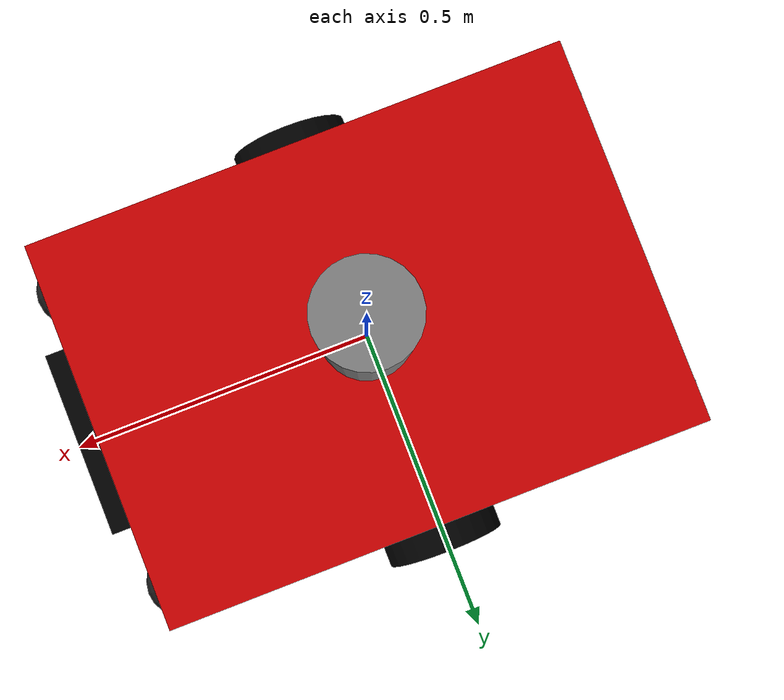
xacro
<?xml version="1.0"?>
<robot xmlns:xacro="http://www.ros.org/wiki/xacro" name="my_robot">

    <!--................................ XACRO CONSTANTS .............................. -->

    <xacro:property name="chassis_mass" value="70"/>
    <xacro:property name="chassis_length" value="0.9"/>
    <xacro:property name="chassis_width" value="0.64"/>
    <xacro:property name="chassis_height" value="0.19"/>

    <xacro:property name="traction_wheel_mass" value="1"/>
    <xacro:property name="traction_wheel_base" value="0.88"/>
    <xacro:property name="traction_max_wheel_torque" value="20000"/>
    <xacro:property name="traction_wheel_friction" value="5.0"/>

    <xacro:property name="trolley_wheel_mass" value="0.1"/>
    <xacro:property name="trolley_track_width" value="0.54"/>
    <xacro:property name="trolley_wheel_friction" value="0.0"/>
    <xacro:property name="trolley_wheel_radius" value="0.06"/>
    <!-- a small constant -->
    <xacro:property name="eps" value="0.002"/>

    <xacro:property name="traction_wheel_radius" value="0.1"/>
    <xacro:property name="traction_wheel_width" value="0.05"/>
    <xacro:property name="traction_track_width" value="0.7"/>

    <xacro:property name="three_d_lidar_height" value="0.5"/>

    <xacro:property name="three_d_lidar_update_rate" value="30"/>
    <xacro:property name="three_d_lidar_horizontal_sample_size" value="361"/>
    <xacro:property name="three_d_lidar_vertical_sample_size" value="181"/>
    <xacro:property name="three_d_lidar_horizontal_min_angle" value="0"/>
    <xacro:property name="three_d_lidar_horizontal_max_angle" value="360"/>
    <xacro:property name="three_d_lidar_vertical_min_angle" value="0"/>
    <xacro:property name="three_d_lidar_vertical_max_angle" value="180"/>
    <xacro:property name="three_d_lidar_min_range" value="0.55"/>
    <xacro:property name="three_d_lidar_max_range" value="16"/>

    <xacro:property name="camera_baseline" value="0.06"/>
    <xacro:property name="camera_height" value="0.10"/>
    <xacro:property name="camera_horizontal_fov" value="60"/>

    <xacro:arg name="robot_namespace" default=""/>
    <xacro:arg name="wheel_odom_topic" default="odom" />
    <xacro:arg name="camera_enabled" default="true" />
    <xacro:arg name="three_d_lidar_height" default="0" />
    <xacro:arg name="publish_wheel_odom_tf" default="true" />
    <xacro:arg name="conveyor_enabled" default="false"/>
    <xacro:arg name="ground_truth_frame" default="map"/>
    <xacro:arg name="sim_gz" default="false" />

    <!-- ............................... LOAD MACROS ................................. -->

    <xacro:include filename="$(find simple_amr_sim)/urdf/materials.xacro"/>
    <xacro:include filename="$(find simple_amr_sim)/urdf/macros.xacro"/>

    <xacro:if value="$(arg sim_gz)">
        <xacro:include filename="$(find simple_amr_sim)/urdf/gz.xacro"/>
    </xacro:if>

    <!-- ................................ BASE LINK .................................. -->

    <link name="base_link"/>

    <link name="chassis_link">

        <collision>
            <origin xyz="0 0 0" rpy="0 0 0" />
            <geometry>
                <box size="${chassis_length} ${chassis_width} ${chassis_height}"/>
            </geometry>
        </collision>

        <visual>
            <origin xyz="0 0 0" rpy="0 0 0" />
            <geometry>
                <box size="${chassis_length} ${chassis_width} ${chassis_height}"/>
            </geometry>
            <material name="red"/>
        </visual>

        <inertial>
            <mass value="${chassis_mass}" />
            <xacro:box_inertia m="${chassis_mass}" x="${chassis_length}" y="${chassis_width}" z = "${chassis_height}"/>
        </inertial>

    </link>

    <joint name="chassis_joint" type="fixed">
        <parent link="base_link"/>
        <child link="chassis_link"/>
        <origin xyz="0.0 0 0" rpy="0 0 0.0" />
    </joint>

    <!-- ................................ WHEELS ..................................... -->

    <xacro:trolley_wheel cardinality="front" dexterity="left" origin_x="${chassis_length/2}" origin_y="${trolley_track_width/2}" origin_z="-${trolley_wheel_radius+chassis_height/2}"/>
    <xacro:trolley_wheel cardinality="front" dexterity="right" origin_x="${chassis_length/2}" origin_y="-${trolley_track_width/2}" origin_z="-${trolley_wheel_radius+chassis_height/2}"/>

    <xacro:trolley_wheel cardinality="back" dexterity="left" origin_x="-${chassis_length/2}" origin_y="${trolley_track_width/2}" origin_z="-${trolley_wheel_radius+chassis_height/2}"/>
    <xacro:trolley_wheel cardinality="back" dexterity="right" origin_x="-${chassis_length/2}" origin_y="-${trolley_track_width/2}" origin_z="-${trolley_wheel_radius+chassis_height/2}"/>

    <xacro:traction_wheel cardinality="middle" dexterity="left" origin_x="0" origin_y="${traction_track_width/2}" origin_z="-${chassis_height/2+2*trolley_wheel_radius+eps-traction_wheel_radius}"/>
    <xacro:traction_wheel cardinality="middle" dexterity="right" origin_x="0" origin_y="-${traction_track_width/2}" origin_z="-${chassis_height/2+2*trolley_wheel_radius+eps-traction_wheel_radius}"/>

    <!-- ............................. CAMERA ........................................ -->

    <xacro:if value="$(arg camera_enabled)">

        <!-- KINECT CAMERA -->

        <link name="kinect_camera">

            <collision>
                <origin xyz="0 0 0" rpy="0 0 0" />
                <geometry>
                    <box size="0.07 0.3 0.09"/>
                </geometry>
            </collision>

            <visual>
                <origin xyz="0 0 0" rpy="0 0 0" />
                <geometry>
                    <box size="0.07 0.3 0.09"/>
                </geometry>
                <material name="black"/>
            </visual>

            <inertial>
                <mass value="0.01"/>
                <xacro:box_inertia m="0.01" x="0.07" y="0.3" z = "0.09"/>
            </inertial>

        </link>

        <joint name="kinect_camera_joint" type="fixed">
            <origin rpy="0 0 0" xyz="${chassis_length/2} 0 ${chassis_height/7}"/>
            <parent link="base_link"/>
            <child link="kinect_camera"/>
        </joint>

        <link name="kinect_camera_optical"/>

        <joint name="kinect_camera_optical_joint" type="fixed">
            <origin xyz="0 0 0" rpy="${-pi/2} 0 ${-pi/2}"/>
            <parent link="kinect_camera"/>
            <child link="kinect_camera_optical"/>
        </joint>

    </xacro:if>
        <!-- ............................. 3D LIDAR STAND ........................................ -->

        <link name="three_d_lidar_stand">
            <collision>
                <origin xyz="0 0 0" rpy="0 0 0" />
                <geometry>
                    <cylinder length="${three_d_lidar_height}" radius="0.075"/>
                </geometry>
            </collision>

            <visual>
                <origin xyz="0 0 0" rpy="0 0 0" />
                <geometry>
                    <cylinder length="${three_d_lidar_height}" radius="0.075"/>
                </geometry>
                <material name="aluminium"/>
            </visual>

            <inertial>
                <origin xyz="0 0 0" rpy="0 0 0" />
                <mass value="0.1"/>
                <xacro:cylinder_inertia m="0.1" r="0.075" h="${three_d_lidar_height}"/>
            </inertial>
        </link>

        <joint name="three_d_lidar_joint" type="fixed">
            <parent link="base_link"/>
            <child link="three_d_lidar_stand"/>
            <origin xyz="0 0 ${three_d_lidar_height/2}" rpy="0 0 0" />
        </joint>

    <!-- ............................. 3D LIDAR ........................................ -->

        <link name="three_d_lidar">

        </link>

        <joint name="three_d_lidar_stand_joint" type="fixed">
            <parent link="three_d_lidar_stand"/>
            <child link="three_d_lidar"/>
            <origin xyz="0 0 ${three_d_lidar_height/2}" rpy="0 0 0" />
        </joint>

        <gazebo reference="three_d_lidar">
            <material>Gazebo/White</material>
        </gazebo>

    <!-- ............................. IMU ........................................ -->

    <link name="imu_frame"/>

    <joint name="imu_joint" type="fixed">
        <parent link="base_link"/>
        <child link="imu_frame"/>
        <origin xyz="0.0 0.0 0.08" rpy="0.0 0.0 0.0"/>
    </joint>

    <!-- ............................. GPS ........................................ -->

    <link name="gps_frame"/>

    <joint name="gps_joint" type="fixed">
        <parent link="base_link"/>
        <child link="gps_frame"/>
        <origin xyz="0.0 0.0 0.08" rpy="0.0 0.0 0.0"/>
    </joint>

</robot>

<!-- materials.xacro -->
<robot xmlns:xacro="http://www.ros.org/wiki/xacro" name="simple_amr_sim">

    <material name="black">
        <color rgba="0.0 0.0 0.0 1.0"/>
    </material>

    <material name="blue">
        <color rgba="0.0 0.0 0.8 1.0"/>
    </material>

    <material name="green">
        <color rgba="0.0 0.8 0.0 1.0"/>
    </material>

    <material name="yellow">
        <color rgba="1.0 1.0 0.0 1.0"/>
    </material>

    <material name="dark_grey">
        <color rgba="0.2 0.2 0.2 1.0"/>
    </material>

    <material name="orange">
        <color rgba="${255/255} ${108/255} ${10/255} 1.0"/>
    </material>

    <material name="brown">
        <color rgba="${139/255} ${69/255} ${19/255} 1.0"/>
    </material>

    <material name="red">
        <color rgba="0.8 0.0 0.0 1.0"/>
    </material>

    <material name="turquoise">
        <color rgba="${64/255} ${224/255} ${208/255} 1.0"/>
    </material>

    <material name="purple">
        <color rgba="${128/255} ${0/255} ${128/255} 1.0"/>
    </material>

    <material name="white">
        <color rgba="1.0 1.0 1.0 1.0"/>
    </material>

    <material name="aluminium">
        <color rgba="0.5 0.5 0.5 1"/>
    </material>

    <material name="plastic">
        <color rgba="0.1 0.1 0.1 1"/>
    </material>

</robot>

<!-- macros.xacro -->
<robot xmlns:xacro="http://www.ros.org/wiki/xacro" name="simple_amr_sim">

    <!--................................ INERTIA MATRICES .............................. -->

    <xacro:macro name="cylinder_inertia" params="m r h">
        <inertia ixx="${m * (3 * r * r + h * h) / 12}" ixy="0" ixz="0" iyy="${m * (3 * r * r + h * h) / 12}" iyz="0" izz="${m * r * r / 2}" />
    </xacro:macro>

    <xacro:macro name="box_inertia" params="m x y z">
        <inertia ixx="${m * (y * y + z * z) / 12}" ixy="0" ixz="0" iyy="${m * (x * x + z * z) / 12}" iyz="0" izz="${m * (y * y + x * x) / 12}" />
    </xacro:macro>

    <xacro:macro name="sphere_inertia" params="m r">
        <inertia ixx="${2 * m * r * r / 5}" ixy="0" ixz="0" iyy="${2 * m * r * r / 5}" iyz="0" izz="${2 * m * r * r / 5}" />
    </xacro:macro>

    <!-- ............................... TROLLEY WHEEL DEFINITION .............................. -->

    <xacro:macro name="trolley_wheel" params="cardinality dexterity origin_x origin_y origin_z">
        <link name="${cardinality}_${dexterity}_wheel">
            <collision>
                <origin xyz="0 0 0" rpy="0 ${pi/2} ${pi/2}" />
                <geometry>
                    <sphere radius="${trolley_wheel_radius}"/>
                </geometry>
            </collision>

            <visual>
                <origin xyz="0 0 0" rpy="0 ${pi/2} ${pi/2}" />
                <geometry>
                    <sphere radius="${trolley_wheel_radius}"/>
                </geometry>

            </visual>

            <inertial>
                <origin xyz="0 0 0" rpy="0 0 0" />
                <mass value="${trolley_wheel_mass}"/>
                <xacro:sphere_inertia m="${trolley_wheel_mass}" r="${trolley_wheel_radius}"/>
            </inertial>

            <mu>0.0</mu>
        </link>

        <joint name="${cardinality}_${dexterity}_wheel_joint" type="fixed">
            <parent link="base_link"/>
            <child link="${cardinality}_${dexterity}_wheel"/>
            <origin xyz="${origin_x} ${origin_y} ${origin_z}" rpy="0 0 0" />
            <axis xyz="0 1 0" rpy="0 0 0" />
        </joint>

        <gazebo reference="${cardinality}_${dexterity}_wheel">
            <material>Gazebo/Black</material>
        </gazebo>
    </xacro:macro>

    <xacro:macro name="traction_wheel" params="cardinality dexterity origin_x origin_y origin_z">
        <link name="${cardinality}_${dexterity}_wheel">
            <collision>
                <origin xyz="0 0 0" rpy="${pi/2} 0 0" />
                <geometry>
                    <cylinder length="${traction_wheel_width}" radius="${traction_wheel_radius}"/>
                </geometry>
            </collision>

            <visual>
                <origin xyz="0 0 0" rpy="${pi/2} 0 0" />
                <geometry>
                    <cylinder length="${traction_wheel_width}" radius="${traction_wheel_radius}"/>
                </geometry>
                <material name="black"/>
            </visual>

            <inertial>
                <origin xyz="0 0 0" rpy="${pi/2} 0 0" />
                <mass value="${traction_wheel_mass}"/>
                <xacro:cylinder_inertia m="${traction_wheel_mass}" r="${traction_wheel_radius}" h="${traction_wheel_width}"/>
            </inertial>

            <mu>5.0</mu>
        </link>

        <joint name="${cardinality}_${dexterity}_wheel_joint" type="continuous">
            <parent link="base_link"/>
            <child link="${cardinality}_${dexterity}_wheel"/>
            <origin xyz="${origin_x} ${origin_y} ${origin_z}" rpy="0 0 0" />
            <axis xyz="0 1 0" rpy="0 0 0" />
        </joint>

        <gazebo reference="${cardinality}_${dexterity}_wheel">
            <material>Gazebo/Black</material>
        </gazebo>
    </xacro:macro>

</robot>
